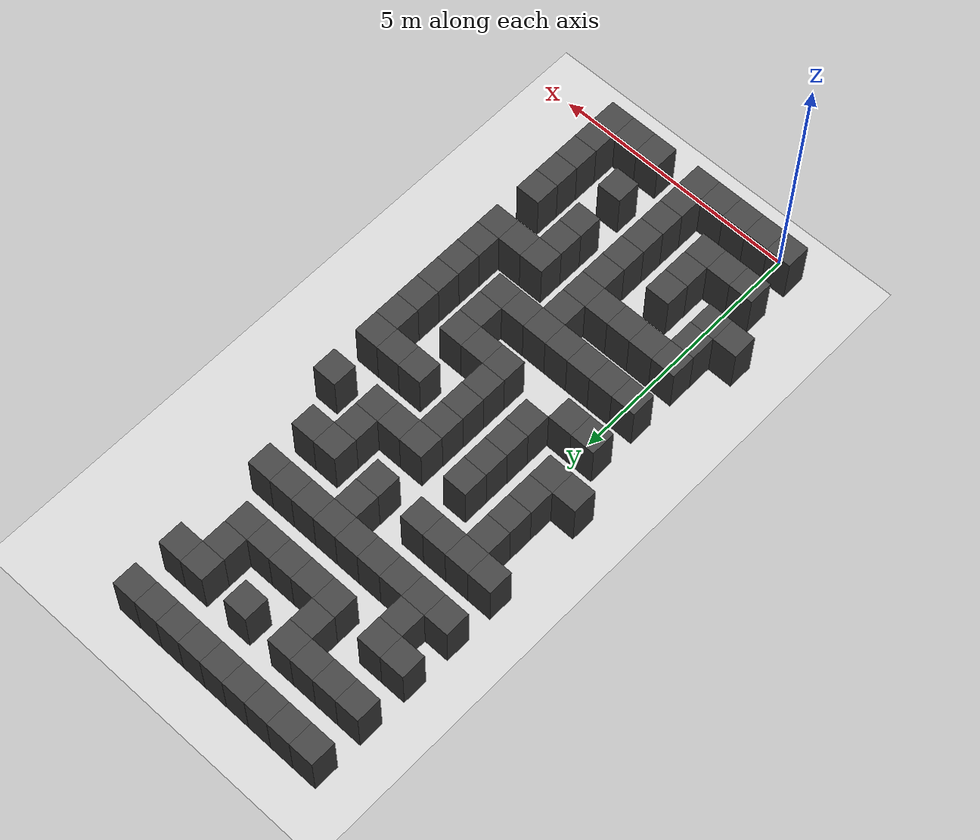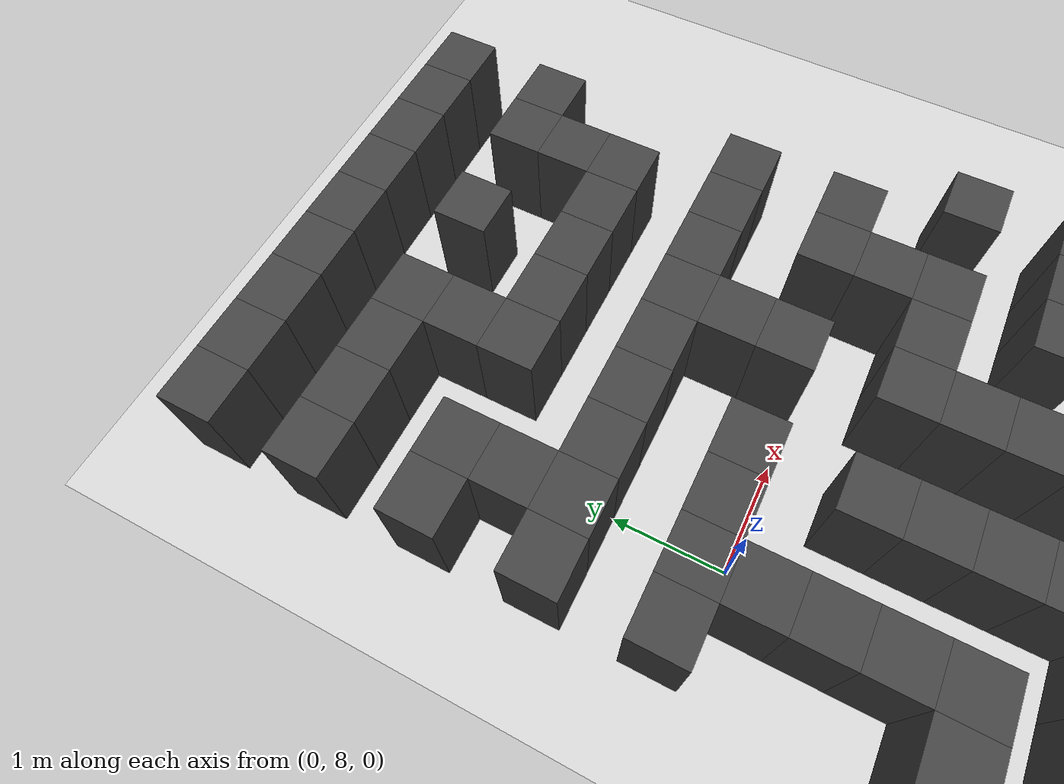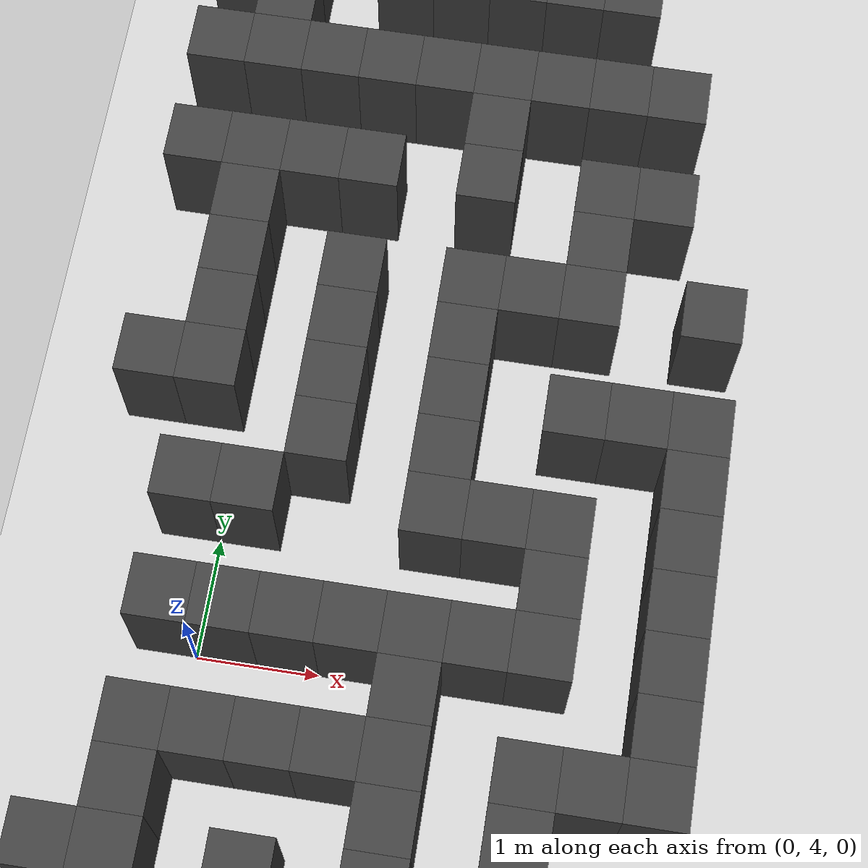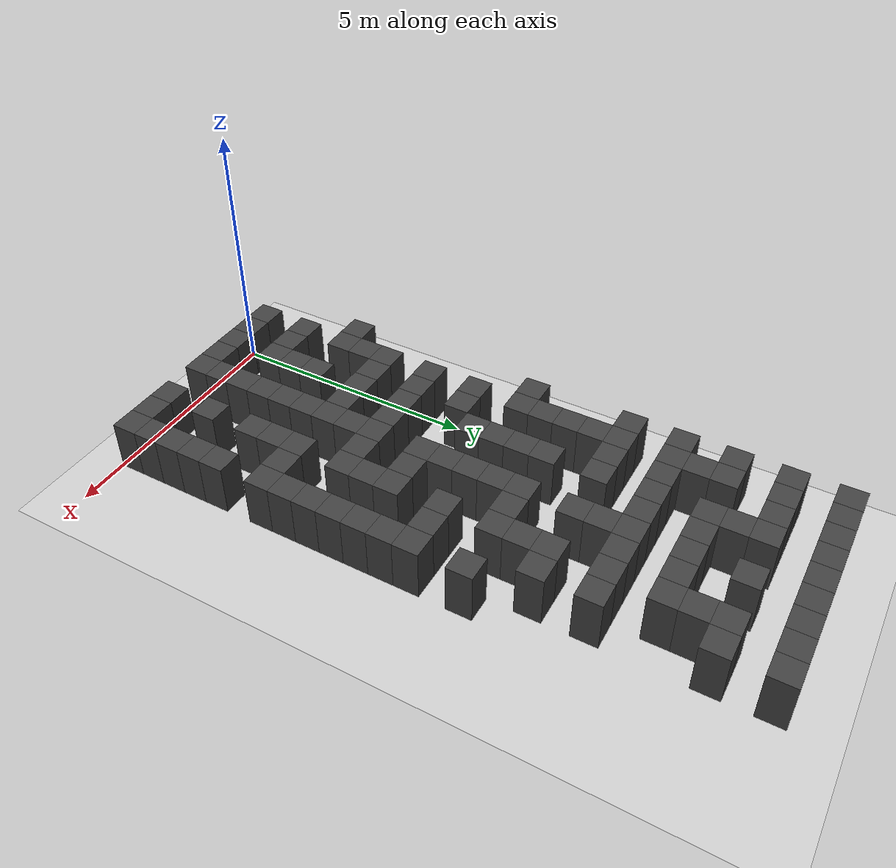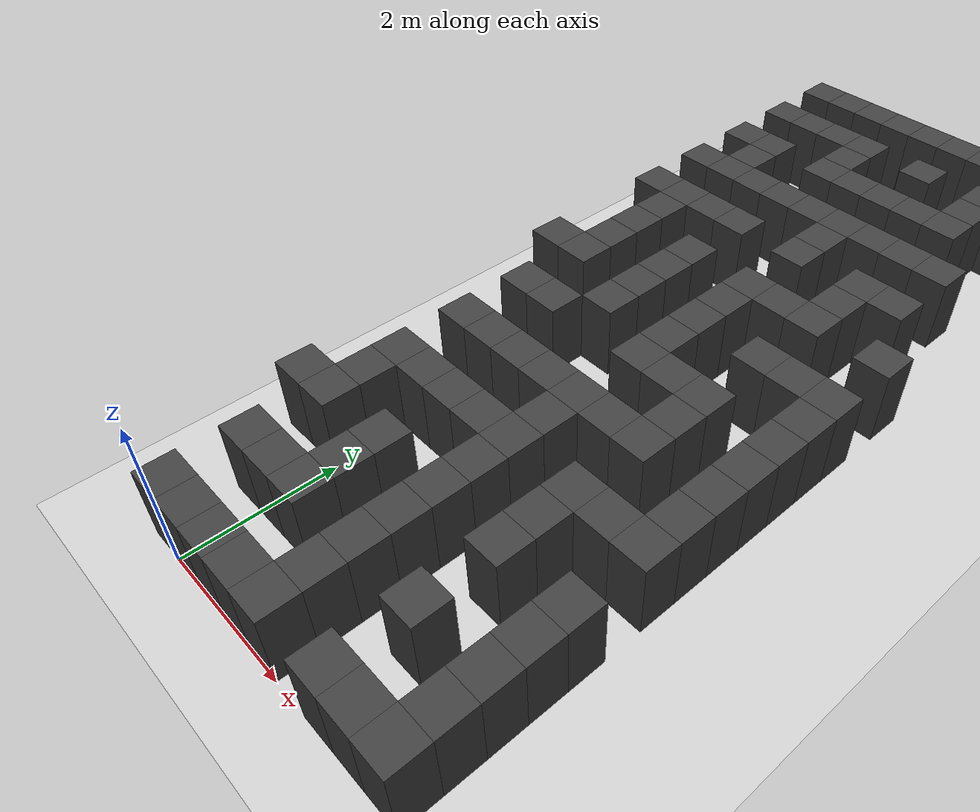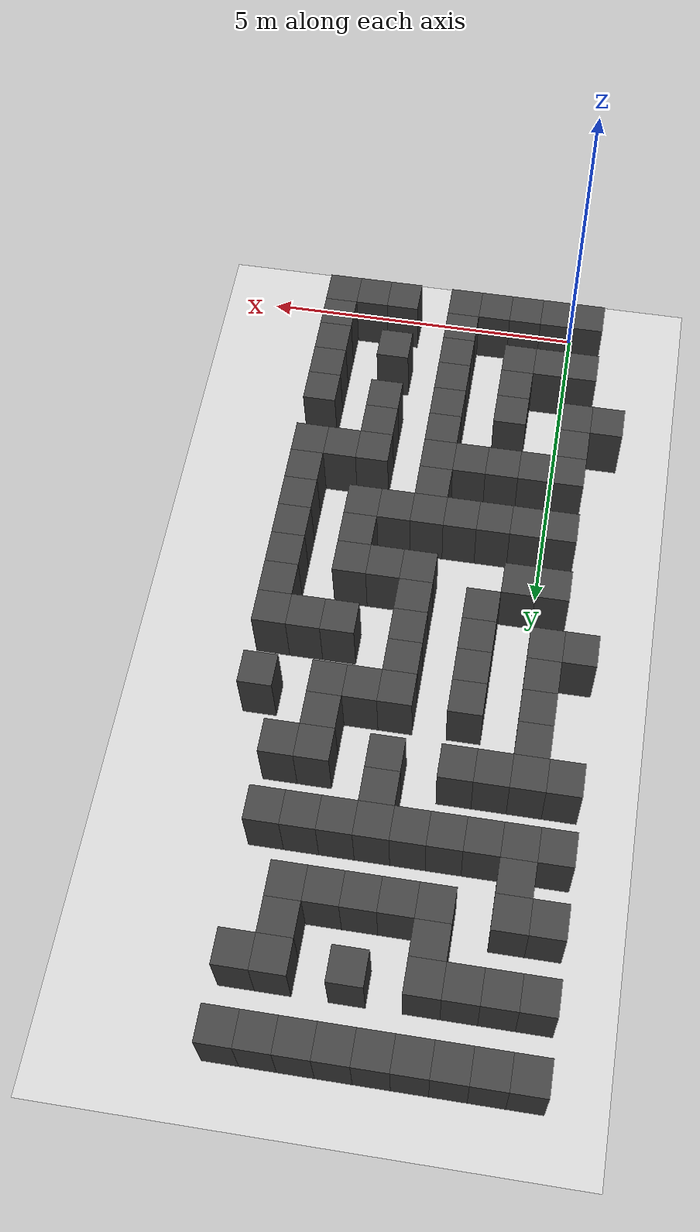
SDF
<sdf version="1.7">
 <world name="map_18332">
  <model name="ground_plane">
   <static>true</static>
   <link name="link">
    <collision name="collision">
     <geometry><plane><normal>0 0 1</normal><size>200 200</size></plane></geometry>
    </collision>
    <visual name="visual">
     <geometry><plane><normal>0 0 1</normal><size>200 200</size></plane></geometry>
     <material><ambient>0.8 0.8 0.8 1</ambient><diffuse>0.8 0.8 0.8 1</diffuse></material>
    </visual>
   </link>
  </model>
  <model name="maze_environment">
   <static>true</static>
   <link name="wall_23">
    <pose>-0.750 12.250 0.500 0 0 0</pose>
    <collision name="col"><geometry><box><size>0.5 0.5 1.0</size></box></geometry></collision>
    <visual name="vis">
     <geometry><box><size>0.5 0.5 1.0</size></box></geometry>
     <material><ambient>0.15 0.15 0.15 1</ambient><diffuse>0.25 0.25 0.25 1</diffuse></material>
    </visual>
   </link>
   <link name="wall_24">
    <pose>-0.250 12.250 0.500 0 0 0</pose>
    <collision name="col"><geometry><box><size>0.5 0.5 1.0</size></box></geometry></collision>
    <visual name="vis">
     <geometry><box><size>0.5 0.5 1.0</size></box></geometry>
     <material><ambient>0.15 0.15 0.15 1</ambient><diffuse>0.25 0.25 0.25 1</diffuse></material>
    </visual>
   </link>
   <link name="wall_25">
    <pose>0.250 12.250 0.500 0 0 0</pose>
    <collision name="col"><geometry><box><size>0.5 0.5 1.0</size></box></geometry></collision>
    <visual name="vis">
     <geometry><box><size>0.5 0.5 1.0</size></box></geometry>
     <material><ambient>0.15 0.15 0.15 1</ambient><diffuse>0.25 0.25 0.25 1</diffuse></material>
    </visual>
   </link>
   <link name="wall_26">
    <pose>0.750 12.250 0.500 0 0 0</pose>
    <collision name="col"><geometry><box><size>0.5 0.5 1.0</size></box></geometry></collision>
    <visual name="vis">
     <geometry><box><size>0.5 0.5 1.0</size></box></geometry>
     <material><ambient>0.15 0.15 0.15 1</ambient><diffuse>0.25 0.25 0.25 1</diffuse></material>
    </visual>
   </link>
   <link name="wall_27">
    <pose>1.250 12.250 0.500 0 0 0</pose>
    <collision name="col"><geometry><box><size>0.5 0.5 1.0</size></box></geometry></collision>
    <visual name="vis">
     <geometry><box><size>0.5 0.5 1.0</size></box></geometry>
     <material><ambient>0.15 0.15 0.15 1</ambient><diffuse>0.25 0.25 0.25 1</diffuse></material>
    </visual>
   </link>
   <link name="wall_28">
    <pose>1.750 12.250 0.500 0 0 0</pose>
    <collision name="col"><geometry><box><size>0.5 0.5 1.0</size></box></geometry></collision>
    <visual name="vis">
     <geometry><box><size>0.5 0.5 1.0</size></box></geometry>
     <material><ambient>0.15 0.15 0.15 1</ambient><diffuse>0.25 0.25 0.25 1</diffuse></material>
    </visual>
   </link>
   <link name="wall_29">
    <pose>2.250 12.250 0.500 0 0 0</pose>
    <collision name="col"><geometry><box><size>0.5 0.5 1.0</size></box></geometry></collision>
    <visual name="vis">
     <geometry><box><size>0.5 0.5 1.0</size></box></geometry>
     <material><ambient>0.15 0.15 0.15 1</ambient><diffuse>0.25 0.25 0.25 1</diffuse></material>
    </visual>
   </link>
   <link name="wall_30">
    <pose>2.750 12.250 0.500 0 0 0</pose>
    <collision name="col"><geometry><box><size>0.5 0.5 1.0</size></box></geometry></collision>
    <visual name="vis">
     <geometry><box><size>0.5 0.5 1.0</size></box></geometry>
     <material><ambient>0.15 0.15 0.15 1</ambient><diffuse>0.25 0.25 0.25 1</diffuse></material>
    </visual>
   </link>
   <link name="wall_31">
    <pose>3.250 12.250 0.500 0 0 0</pose>
    <collision name="col"><geometry><box><size>0.5 0.5 1.0</size></box></geometry></collision>
    <visual name="vis">
     <geometry><box><size>0.5 0.5 1.0</size></box></geometry>
     <material><ambient>0.15 0.15 0.15 1</ambient><diffuse>0.25 0.25 0.25 1</diffuse></material>
    </visual>
   </link>
   <link name="wall_73">
    <pose>-0.750 11.250 0.500 0 0 0</pose>
    <collision name="col"><geometry><box><size>0.5 0.5 1.0</size></box></geometry></collision>
    <visual name="vis">
     <geometry><box><size>0.5 0.5 1.0</size></box></geometry>
     <material><ambient>0.15 0.15 0.15 1</ambient><diffuse>0.25 0.25 0.25 1</diffuse></material>
    </visual>
   </link>
   <link name="wall_74">
    <pose>-0.250 11.250 0.500 0 0 0</pose>
    <collision name="col"><geometry><box><size>0.5 0.5 1.0</size></box></geometry></collision>
    <visual name="vis">
     <geometry><box><size>0.5 0.5 1.0</size></box></geometry>
     <material><ambient>0.15 0.15 0.15 1</ambient><diffuse>0.25 0.25 0.25 1</diffuse></material>
    </visual>
   </link>
   <link name="wall_75">
    <pose>0.250 11.250 0.500 0 0 0</pose>
    <collision name="col"><geometry><box><size>0.5 0.5 1.0</size></box></geometry></collision>
    <visual name="vis">
     <geometry><box><size>0.5 0.5 1.0</size></box></geometry>
     <material><ambient>0.15 0.15 0.15 1</ambient><diffuse>0.25 0.25 0.25 1</diffuse></material>
    </visual>
   </link>
   <link name="wall_76">
    <pose>0.750 11.250 0.500 0 0 0</pose>
    <collision name="col"><geometry><box><size>0.5 0.5 1.0</size></box></geometry></collision>
    <visual name="vis">
     <geometry><box><size>0.5 0.5 1.0</size></box></geometry>
     <material><ambient>0.15 0.15 0.15 1</ambient><diffuse>0.25 0.25 0.25 1</diffuse></material>
    </visual>
   </link>
   <link name="wall_77">
    <pose>1.750 11.250 0.500 0 0 0</pose>
    <collision name="col"><geometry><box><size>0.5 0.5 1.0</size></box></geometry></collision>
    <visual name="vis">
     <geometry><box><size>0.5 0.5 1.0</size></box></geometry>
     <material><ambient>0.15 0.15 0.15 1</ambient><diffuse>0.25 0.25 0.25 1</diffuse></material>
    </visual>
   </link>
   <link name="wall_78">
    <pose>2.750 11.250 0.500 0 0 0</pose>
    <collision name="col"><geometry><box><size>0.5 0.5 1.0</size></box></geometry></collision>
    <visual name="vis">
     <geometry><box><size>0.5 0.5 1.0</size></box></geometry>
     <material><ambient>0.15 0.15 0.15 1</ambient><diffuse>0.25 0.25 0.25 1</diffuse></material>
    </visual>
   </link>
   <link name="wall_79">
    <pose>3.250 11.250 0.500 0 0 0</pose>
    <collision name="col"><geometry><box><size>0.5 0.5 1.0</size></box></geometry></collision>
    <visual name="vis">
     <geometry><box><size>0.5 0.5 1.0</size></box></geometry>
     <material><ambient>0.15 0.15 0.15 1</ambient><diffuse>0.25 0.25 0.25 1</diffuse></material>
    </visual>
   </link>
   <link name="wall_99">
    <pose>0.750 10.750 0.500 0 0 0</pose>
    <collision name="col"><geometry><box><size>0.5 0.5 1.0</size></box></geometry></collision>
    <visual name="vis">
     <geometry><box><size>0.5 0.5 1.0</size></box></geometry>
     <material><ambient>0.15 0.15 0.15 1</ambient><diffuse>0.25 0.25 0.25 1</diffuse></material>
    </visual>
   </link>
   <link name="wall_100">
    <pose>2.750 10.750 0.500 0 0 0</pose>
    <collision name="col"><geometry><box><size>0.5 0.5 1.0</size></box></geometry></collision>
    <visual name="vis">
     <geometry><box><size>0.5 0.5 1.0</size></box></geometry>
     <material><ambient>0.15 0.15 0.15 1</ambient><diffuse>0.25 0.25 0.25 1</diffuse></material>
    </visual>
   </link>
   <link name="wall_124">
    <pose>-0.750 10.250 0.500 0 0 0</pose>
    <collision name="col"><geometry><box><size>0.5 0.5 1.0</size></box></geometry></collision>
    <visual name="vis">
     <geometry><box><size>0.5 0.5 1.0</size></box></geometry>
     <material><ambient>0.15 0.15 0.15 1</ambient><diffuse>0.25 0.25 0.25 1</diffuse></material>
    </visual>
   </link>
   <link name="wall_125">
    <pose>-0.250 10.250 0.500 0 0 0</pose>
    <collision name="col"><geometry><box><size>0.5 0.5 1.0</size></box></geometry></collision>
    <visual name="vis">
     <geometry><box><size>0.5 0.5 1.0</size></box></geometry>
     <material><ambient>0.15 0.15 0.15 1</ambient><diffuse>0.25 0.25 0.25 1</diffuse></material>
    </visual>
   </link>
   <link name="wall_126">
    <pose>0.750 10.250 0.500 0 0 0</pose>
    <collision name="col"><geometry><box><size>0.5 0.5 1.0</size></box></geometry></collision>
    <visual name="vis">
     <geometry><box><size>0.5 0.5 1.0</size></box></geometry>
     <material><ambient>0.15 0.15 0.15 1</ambient><diffuse>0.25 0.25 0.25 1</diffuse></material>
    </visual>
   </link>
   <link name="wall_127">
    <pose>1.250 10.250 0.500 0 0 0</pose>
    <collision name="col"><geometry><box><size>0.5 0.5 1.0</size></box></geometry></collision>
    <visual name="vis">
     <geometry><box><size>0.5 0.5 1.0</size></box></geometry>
     <material><ambient>0.15 0.15 0.15 1</ambient><diffuse>0.25 0.25 0.25 1</diffuse></material>
    </visual>
   </link>
   <link name="wall_128">
    <pose>1.750 10.250 0.500 0 0 0</pose>
    <collision name="col"><geometry><box><size>0.5 0.5 1.0</size></box></geometry></collision>
    <visual name="vis">
     <geometry><box><size>0.5 0.5 1.0</size></box></geometry>
     <material><ambient>0.15 0.15 0.15 1</ambient><diffuse>0.25 0.25 0.25 1</diffuse></material>
    </visual>
   </link>
   <link name="wall_129">
    <pose>2.250 10.250 0.500 0 0 0</pose>
    <collision name="col"><geometry><box><size>0.5 0.5 1.0</size></box></geometry></collision>
    <visual name="vis">
     <geometry><box><size>0.5 0.5 1.0</size></box></geometry>
     <material><ambient>0.15 0.15 0.15 1</ambient><diffuse>0.25 0.25 0.25 1</diffuse></material>
    </visual>
   </link>
   <link name="wall_130">
    <pose>2.750 10.250 0.500 0 0 0</pose>
    <collision name="col"><geometry><box><size>0.5 0.5 1.0</size></box></geometry></collision>
    <visual name="vis">
     <geometry><box><size>0.5 0.5 1.0</size></box></geometry>
     <material><ambient>0.15 0.15 0.15 1</ambient><diffuse>0.25 0.25 0.25 1</diffuse></material>
    </visual>
   </link>
   <link name="wall_151">
    <pose>-0.250 9.750 0.500 0 0 0</pose>
    <collision name="col"><geometry><box><size>0.5 0.5 1.0</size></box></geometry></collision>
    <visual name="vis">
     <geometry><box><size>0.5 0.5 1.0</size></box></geometry>
     <material><ambient>0.15 0.15 0.15 1</ambient><diffuse>0.25 0.25 0.25 1</diffuse></material>
    </visual>
   </link>
   <link name="wall_172">
    <pose>-0.750 9.250 0.500 0 0 0</pose>
    <collision name="col"><geometry><box><size>0.5 0.5 1.0</size></box></geometry></collision>
    <visual name="vis">
     <geometry><box><size>0.5 0.5 1.0</size></box></geometry>
     <material><ambient>0.15 0.15 0.15 1</ambient><diffuse>0.25 0.25 0.25 1</diffuse></material>
    </visual>
   </link>
   <link name="wall_173">
    <pose>-0.250 9.250 0.500 0 0 0</pose>
    <collision name="col"><geometry><box><size>0.5 0.5 1.0</size></box></geometry></collision>
    <visual name="vis">
     <geometry><box><size>0.5 0.5 1.0</size></box></geometry>
     <material><ambient>0.15 0.15 0.15 1</ambient><diffuse>0.25 0.25 0.25 1</diffuse></material>
    </visual>
   </link>
   <link name="wall_174">
    <pose>0.250 9.250 0.500 0 0 0</pose>
    <collision name="col"><geometry><box><size>0.5 0.5 1.0</size></box></geometry></collision>
    <visual name="vis">
     <geometry><box><size>0.5 0.5 1.0</size></box></geometry>
     <material><ambient>0.15 0.15 0.15 1</ambient><diffuse>0.25 0.25 0.25 1</diffuse></material>
    </visual>
   </link>
   <link name="wall_175">
    <pose>0.750 9.250 0.500 0 0 0</pose>
    <collision name="col"><geometry><box><size>0.5 0.5 1.0</size></box></geometry></collision>
    <visual name="vis">
     <geometry><box><size>0.5 0.5 1.0</size></box></geometry>
     <material><ambient>0.15 0.15 0.15 1</ambient><diffuse>0.25 0.25 0.25 1</diffuse></material>
    </visual>
   </link>
   <link name="wall_176">
    <pose>1.250 9.250 0.500 0 0 0</pose>
    <collision name="col"><geometry><box><size>0.5 0.5 1.0</size></box></geometry></collision>
    <visual name="vis">
     <geometry><box><size>0.5 0.5 1.0</size></box></geometry>
     <material><ambient>0.15 0.15 0.15 1</ambient><diffuse>0.25 0.25 0.25 1</diffuse></material>
    </visual>
   </link>
   <link name="wall_177">
    <pose>1.750 9.250 0.500 0 0 0</pose>
    <collision name="col"><geometry><box><size>0.5 0.5 1.0</size></box></geometry></collision>
    <visual name="vis">
     <geometry><box><size>0.5 0.5 1.0</size></box></geometry>
     <material><ambient>0.15 0.15 0.15 1</ambient><diffuse>0.25 0.25 0.25 1</diffuse></material>
    </visual>
   </link>
   <link name="wall_178">
    <pose>2.250 9.250 0.500 0 0 0</pose>
    <collision name="col"><geometry><box><size>0.5 0.5 1.0</size></box></geometry></collision>
    <visual name="vis">
     <geometry><box><size>0.5 0.5 1.0</size></box></geometry>
     <material><ambient>0.15 0.15 0.15 1</ambient><diffuse>0.25 0.25 0.25 1</diffuse></material>
    </visual>
   </link>
   <link name="wall_179">
    <pose>2.750 9.250 0.500 0 0 0</pose>
    <collision name="col"><geometry><box><size>0.5 0.5 1.0</size></box></geometry></collision>
    <visual name="vis">
     <geometry><box><size>0.5 0.5 1.0</size></box></geometry>
     <material><ambient>0.15 0.15 0.15 1</ambient><diffuse>0.25 0.25 0.25 1</diffuse></material>
    </visual>
   </link>
   <link name="wall_180">
    <pose>3.250 9.250 0.500 0 0 0</pose>
    <collision name="col"><geometry><box><size>0.5 0.5 1.0</size></box></geometry></collision>
    <visual name="vis">
     <geometry><box><size>0.5 0.5 1.0</size></box></geometry>
     <material><ambient>0.15 0.15 0.15 1</ambient><diffuse>0.25 0.25 0.25 1</diffuse></material>
    </visual>
   </link>
   <link name="wall_202">
    <pose>1.750 8.750 0.500 0 0 0</pose>
    <collision name="col"><geometry><box><size>0.5 0.5 1.0</size></box></geometry></collision>
    <visual name="vis">
     <geometry><box><size>0.5 0.5 1.0</size></box></geometry>
     <material><ambient>0.15 0.15 0.15 1</ambient><diffuse>0.25 0.25 0.25 1</diffuse></material>
    </visual>
   </link>
   <link name="wall_224">
    <pose>-0.750 8.250 0.500 0 0 0</pose>
    <collision name="col"><geometry><box><size>0.5 0.5 1.0</size></box></geometry></collision>
    <visual name="vis">
     <geometry><box><size>0.5 0.5 1.0</size></box></geometry>
     <material><ambient>0.15 0.15 0.15 1</ambient><diffuse>0.25 0.25 0.25 1</diffuse></material>
    </visual>
   </link>
   <link name="wall_225">
    <pose>-0.250 8.250 0.500 0 0 0</pose>
    <collision name="col"><geometry><box><size>0.5 0.5 1.0</size></box></geometry></collision>
    <visual name="vis">
     <geometry><box><size>0.5 0.5 1.0</size></box></geometry>
     <material><ambient>0.15 0.15 0.15 1</ambient><diffuse>0.25 0.25 0.25 1</diffuse></material>
    </visual>
   </link>
   <link name="wall_226">
    <pose>0.250 8.250 0.500 0 0 0</pose>
    <collision name="col"><geometry><box><size>0.5 0.5 1.0</size></box></geometry></collision>
    <visual name="vis">
     <geometry><box><size>0.5 0.5 1.0</size></box></geometry>
     <material><ambient>0.15 0.15 0.15 1</ambient><diffuse>0.25 0.25 0.25 1</diffuse></material>
    </visual>
   </link>
   <link name="wall_227">
    <pose>0.750 8.250 0.500 0 0 0</pose>
    <collision name="col"><geometry><box><size>0.5 0.5 1.0</size></box></geometry></collision>
    <visual name="vis">
     <geometry><box><size>0.5 0.5 1.0</size></box></geometry>
     <material><ambient>0.15 0.15 0.15 1</ambient><diffuse>0.25 0.25 0.25 1</diffuse></material>
    </visual>
   </link>
   <link name="wall_228">
    <pose>1.750 8.250 0.500 0 0 0</pose>
    <collision name="col"><geometry><box><size>0.5 0.5 1.0</size></box></geometry></collision>
    <visual name="vis">
     <geometry><box><size>0.5 0.5 1.0</size></box></geometry>
     <material><ambient>0.15 0.15 0.15 1</ambient><diffuse>0.25 0.25 0.25 1</diffuse></material>
    </visual>
   </link>
   <link name="wall_229">
    <pose>2.750 8.250 0.500 0 0 0</pose>
    <collision name="col"><geometry><box><size>0.5 0.5 1.0</size></box></geometry></collision>
    <visual name="vis">
     <geometry><box><size>0.5 0.5 1.0</size></box></geometry>
     <material><ambient>0.15 0.15 0.15 1</ambient><diffuse>0.25 0.25 0.25 1</diffuse></material>
    </visual>
   </link>
   <link name="wall_230">
    <pose>3.250 8.250 0.500 0 0 0</pose>
    <collision name="col"><geometry><box><size>0.5 0.5 1.0</size></box></geometry></collision>
    <visual name="vis">
     <geometry><box><size>0.5 0.5 1.0</size></box></geometry>
     <material><ambient>0.15 0.15 0.15 1</ambient><diffuse>0.25 0.25 0.25 1</diffuse></material>
    </visual>
   </link>
   <link name="wall_252">
    <pose>-0.250 7.750 0.500 0 0 0</pose>
    <collision name="col"><geometry><box><size>0.5 0.5 1.0</size></box></geometry></collision>
    <visual name="vis">
     <geometry><box><size>0.5 0.5 1.0</size></box></geometry>
     <material><ambient>0.15 0.15 0.15 1</ambient><diffuse>0.25 0.25 0.25 1</diffuse></material>
    </visual>
   </link>
   <link name="wall_253">
    <pose>2.750 7.750 0.500 0 0 0</pose>
    <collision name="col"><geometry><box><size>0.5 0.5 1.0</size></box></geometry></collision>
    <visual name="vis">
     <geometry><box><size>0.5 0.5 1.0</size></box></geometry>
     <material><ambient>0.15 0.15 0.15 1</ambient><diffuse>0.25 0.25 0.25 1</diffuse></material>
    </visual>
   </link>
   <link name="wall_273">
    <pose>-0.250 7.250 0.500 0 0 0</pose>
    <collision name="col"><geometry><box><size>0.5 0.5 1.0</size></box></geometry></collision>
    <visual name="vis">
     <geometry><box><size>0.5 0.5 1.0</size></box></geometry>
     <material><ambient>0.15 0.15 0.15 1</ambient><diffuse>0.25 0.25 0.25 1</diffuse></material>
    </visual>
   </link>
   <link name="wall_274">
    <pose>0.750 7.250 0.500 0 0 0</pose>
    <collision name="col"><geometry><box><size>0.5 0.5 1.0</size></box></geometry></collision>
    <visual name="vis">
     <geometry><box><size>0.5 0.5 1.0</size></box></geometry>
     <material><ambient>0.15 0.15 0.15 1</ambient><diffuse>0.25 0.25 0.25 1</diffuse></material>
    </visual>
   </link>
   <link name="wall_275">
    <pose>1.750 7.250 0.500 0 0 0</pose>
    <collision name="col"><geometry><box><size>0.5 0.5 1.0</size></box></geometry></collision>
    <visual name="vis">
     <geometry><box><size>0.5 0.5 1.0</size></box></geometry>
     <material><ambient>0.15 0.15 0.15 1</ambient><diffuse>0.25 0.25 0.25 1</diffuse></material>
    </visual>
   </link>
   <link name="wall_276">
    <pose>2.250 7.250 0.500 0 0 0</pose>
    <collision name="col"><geometry><box><size>0.5 0.5 1.0</size></box></geometry></collision>
    <visual name="vis">
     <geometry><box><size>0.5 0.5 1.0</size></box></geometry>
     <material><ambient>0.15 0.15 0.15 1</ambient><diffuse>0.25 0.25 0.25 1</diffuse></material>
    </visual>
   </link>
   <link name="wall_277">
    <pose>2.750 7.250 0.500 0 0 0</pose>
    <collision name="col"><geometry><box><size>0.5 0.5 1.0</size></box></geometry></collision>
    <visual name="vis">
     <geometry><box><size>0.5 0.5 1.0</size></box></geometry>
     <material><ambient>0.15 0.15 0.15 1</ambient><diffuse>0.25 0.25 0.25 1</diffuse></material>
    </visual>
   </link>
   <link name="wall_278">
    <pose>3.750 7.250 0.500 0 0 0</pose>
    <collision name="col"><geometry><box><size>0.5 0.5 1.0</size></box></geometry></collision>
    <visual name="vis">
     <geometry><box><size>0.5 0.5 1.0</size></box></geometry>
     <material><ambient>0.15 0.15 0.15 1</ambient><diffuse>0.25 0.25 0.25 1</diffuse></material>
    </visual>
   </link>
   <link name="wall_299">
    <pose>-0.250 6.750 0.500 0 0 0</pose>
    <collision name="col"><geometry><box><size>0.5 0.5 1.0</size></box></geometry></collision>
    <visual name="vis">
     <geometry><box><size>0.5 0.5 1.0</size></box></geometry>
     <material><ambient>0.15 0.15 0.15 1</ambient><diffuse>0.25 0.25 0.25 1</diffuse></material>
    </visual>
   </link>
   <link name="wall_300">
    <pose>0.750 6.750 0.500 0 0 0</pose>
    <collision name="col"><geometry><box><size>0.5 0.5 1.0</size></box></geometry></collision>
    <visual name="vis">
     <geometry><box><size>0.5 0.5 1.0</size></box></geometry>
     <material><ambient>0.15 0.15 0.15 1</ambient><diffuse>0.25 0.25 0.25 1</diffuse></material>
    </visual>
   </link>
   <link name="wall_301">
    <pose>1.750 6.750 0.500 0 0 0</pose>
    <collision name="col"><geometry><box><size>0.5 0.5 1.0</size></box></geometry></collision>
    <visual name="vis">
     <geometry><box><size>0.5 0.5 1.0</size></box></geometry>
     <material><ambient>0.15 0.15 0.15 1</ambient><diffuse>0.25 0.25 0.25 1</diffuse></material>
    </visual>
   </link>
   <link name="wall_326">
    <pose>-0.750 6.250 0.500 0 0 0</pose>
    <collision name="col"><geometry><box><size>0.5 0.5 1.0</size></box></geometry></collision>
    <visual name="vis">
     <geometry><box><size>0.5 0.5 1.0</size></box></geometry>
     <material><ambient>0.15 0.15 0.15 1</ambient><diffuse>0.25 0.25 0.25 1</diffuse></material>
    </visual>
   </link>
   <link name="wall_327">
    <pose>-0.250 6.250 0.500 0 0 0</pose>
    <collision name="col"><geometry><box><size>0.5 0.5 1.0</size></box></geometry></collision>
    <visual name="vis">
     <geometry><box><size>0.5 0.5 1.0</size></box></geometry>
     <material><ambient>0.15 0.15 0.15 1</ambient><diffuse>0.25 0.25 0.25 1</diffuse></material>
    </visual>
   </link>
   <link name="wall_328">
    <pose>0.750 6.250 0.500 0 0 0</pose>
    <collision name="col"><geometry><box><size>0.5 0.5 1.0</size></box></geometry></collision>
    <visual name="vis">
     <geometry><box><size>0.5 0.5 1.0</size></box></geometry>
     <material><ambient>0.15 0.15 0.15 1</ambient><diffuse>0.25 0.25 0.25 1</diffuse></material>
    </visual>
   </link>
   <link name="wall_329">
    <pose>1.750 6.250 0.500 0 0 0</pose>
    <collision name="col"><geometry><box><size>0.5 0.5 1.0</size></box></geometry></collision>
    <visual name="vis">
     <geometry><box><size>0.5 0.5 1.0</size></box></geometry>
     <material><ambient>0.15 0.15 0.15 1</ambient><diffuse>0.25 0.25 0.25 1</diffuse></material>
    </visual>
   </link>
   <link name="wall_330">
    <pose>2.750 6.250 0.500 0 0 0</pose>
    <collision name="col"><geometry><box><size>0.5 0.5 1.0</size></box></geometry></collision>
    <visual name="vis">
     <geometry><box><size>0.5 0.5 1.0</size></box></geometry>
     <material><ambient>0.15 0.15 0.15 1</ambient><diffuse>0.25 0.25 0.25 1</diffuse></material>
    </visual>
   </link>
   <link name="wall_331">
    <pose>3.250 6.250 0.500 0 0 0</pose>
    <collision name="col"><geometry><box><size>0.5 0.5 1.0</size></box></geometry></collision>
    <visual name="vis">
     <geometry><box><size>0.5 0.5 1.0</size></box></geometry>
     <material><ambient>0.15 0.15 0.15 1</ambient><diffuse>0.25 0.25 0.25 1</diffuse></material>
    </visual>
   </link>
   <link name="wall_332">
    <pose>3.750 6.250 0.500 0 0 0</pose>
    <collision name="col"><geometry><box><size>0.5 0.5 1.0</size></box></geometry></collision>
    <visual name="vis">
     <geometry><box><size>0.5 0.5 1.0</size></box></geometry>
     <material><ambient>0.15 0.15 0.15 1</ambient><diffuse>0.25 0.25 0.25 1</diffuse></material>
    </visual>
   </link>
   <link name="wall_354">
    <pose>0.750 5.750 0.500 0 0 0</pose>
    <collision name="col"><geometry><box><size>0.5 0.5 1.0</size></box></geometry></collision>
    <visual name="vis">
     <geometry><box><size>0.5 0.5 1.0</size></box></geometry>
     <material><ambient>0.15 0.15 0.15 1</ambient><diffuse>0.25 0.25 0.25 1</diffuse></material>
    </visual>
   </link>
   <link name="wall_355">
    <pose>1.750 5.750 0.500 0 0 0</pose>
    <collision name="col"><geometry><box><size>0.5 0.5 1.0</size></box></geometry></collision>
    <visual name="vis">
     <geometry><box><size>0.5 0.5 1.0</size></box></geometry>
     <material><ambient>0.15 0.15 0.15 1</ambient><diffuse>0.25 0.25 0.25 1</diffuse></material>
    </visual>
   </link>
   <link name="wall_356">
    <pose>3.750 5.750 0.500 0 0 0</pose>
    <collision name="col"><geometry><box><size>0.5 0.5 1.0</size></box></geometry></collision>
    <visual name="vis">
     <geometry><box><size>0.5 0.5 1.0</size></box></geometry>
     <material><ambient>0.15 0.15 0.15 1</ambient><diffuse>0.25 0.25 0.25 1</diffuse></material>
    </visual>
   </link>
   <link name="wall_374">
    <pose>-0.250 5.250 0.500 0 0 0</pose>
    <collision name="col"><geometry><box><size>0.5 0.5 1.0</size></box></geometry></collision>
    <visual name="vis">
     <geometry><box><size>0.5 0.5 1.0</size></box></geometry>
     <material><ambient>0.15 0.15 0.15 1</ambient><diffuse>0.25 0.25 0.25 1</diffuse></material>
    </visual>
   </link>
   <link name="wall_375">
    <pose>0.250 5.250 0.500 0 0 0</pose>
    <collision name="col"><geometry><box><size>0.5 0.5 1.0</size></box></geometry></collision>
    <visual name="vis">
     <geometry><box><size>0.5 0.5 1.0</size></box></geometry>
     <material><ambient>0.15 0.15 0.15 1</ambient><diffuse>0.25 0.25 0.25 1</diffuse></material>
    </visual>
   </link>
   <link name="wall_376">
    <pose>1.750 5.250 0.500 0 0 0</pose>
    <collision name="col"><geometry><box><size>0.5 0.5 1.0</size></box></geometry></collision>
    <visual name="vis">
     <geometry><box><size>0.5 0.5 1.0</size></box></geometry>
     <material><ambient>0.15 0.15 0.15 1</ambient><diffuse>0.25 0.25 0.25 1</diffuse></material>
    </visual>
   </link>
   <link name="wall_377">
    <pose>2.250 5.250 0.500 0 0 0</pose>
    <collision name="col"><geometry><box><size>0.5 0.5 1.0</size></box></geometry></collision>
    <visual name="vis">
     <geometry><box><size>0.5 0.5 1.0</size></box></geometry>
     <material><ambient>0.15 0.15 0.15 1</ambient><diffuse>0.25 0.25 0.25 1</diffuse></material>
    </visual>
   </link>
   <link name="wall_378">
    <pose>2.750 5.250 0.500 0 0 0</pose>
    <collision name="col"><geometry><box><size>0.5 0.5 1.0</size></box></geometry></collision>
    <visual name="vis">
     <geometry><box><size>0.5 0.5 1.0</size></box></geometry>
     <material><ambient>0.15 0.15 0.15 1</ambient><diffuse>0.25 0.25 0.25 1</diffuse></material>
    </visual>
   </link>
   <link name="wall_379">
    <pose>3.750 5.250 0.500 0 0 0</pose>
    <collision name="col"><geometry><box><size>0.5 0.5 1.0</size></box></geometry></collision>
    <visual name="vis">
     <geometry><box><size>0.5 0.5 1.0</size></box></geometry>
     <material><ambient>0.15 0.15 0.15 1</ambient><diffuse>0.25 0.25 0.25 1</diffuse></material>
    </visual>
   </link>
   <link name="wall_401">
    <pose>2.750 4.750 0.500 0 0 0</pose>
    <collision name="col"><geometry><box><size>0.5 0.5 1.0</size></box></geometry></collision>
    <visual name="vis">
     <geometry><box><size>0.5 0.5 1.0</size></box></geometry>
     <material><ambient>0.15 0.15 0.15 1</ambient><diffuse>0.25 0.25 0.25 1</diffuse></material>
    </visual>
   </link>
   <link name="wall_402">
    <pose>3.750 4.750 0.500 0 0 0</pose>
    <collision name="col"><geometry><box><size>0.5 0.5 1.0</size></box></geometry></collision>
    <visual name="vis">
     <geometry><box><size>0.5 0.5 1.0</size></box></geometry>
     <material><ambient>0.15 0.15 0.15 1</ambient><diffuse>0.25 0.25 0.25 1</diffuse></material>
    </visual>
   </link>
   <link name="wall_426">
    <pose>-0.250 4.250 0.500 0 0 0</pose>
    <collision name="col"><geometry><box><size>0.5 0.5 1.0</size></box></geometry></collision>
    <visual name="vis">
     <geometry><box><size>0.5 0.5 1.0</size></box></geometry>
     <material><ambient>0.15 0.15 0.15 1</ambient><diffuse>0.25 0.25 0.25 1</diffuse></material>
    </visual>
   </link>
   <link name="wall_427">
    <pose>0.250 4.250 0.500 0 0 0</pose>
    <collision name="col"><geometry><box><size>0.5 0.5 1.0</size></box></geometry></collision>
    <visual name="vis">
     <geometry><box><size>0.5 0.5 1.0</size></box></geometry>
     <material><ambient>0.15 0.15 0.15 1</ambient><diffuse>0.25 0.25 0.25 1</diffuse></material>
    </visual>
   </link>
   <link name="wall_428">
    <pose>0.750 4.250 0.500 0 0 0</pose>
    <collision name="col"><geometry><box><size>0.5 0.5 1.0</size></box></geometry></collision>
    <visual name="vis">
     <geometry><box><size>0.5 0.5 1.0</size></box></geometry>
     <material><ambient>0.15 0.15 0.15 1</ambient><diffuse>0.25 0.25 0.25 1</diffuse></material>
    </visual>
   </link>
   <link name="wall_429">
    <pose>1.250 4.250 0.500 0 0 0</pose>
    <collision name="col"><geometry><box><size>0.5 0.5 1.0</size></box></geometry></collision>
    <visual name="vis">
     <geometry><box><size>0.5 0.5 1.0</size></box></geometry>
     <material><ambient>0.15 0.15 0.15 1</ambient><diffuse>0.25 0.25 0.25 1</diffuse></material>
    </visual>
   </link>
   <link name="wall_430">
    <pose>1.750 4.250 0.500 0 0 0</pose>
    <collision name="col"><geometry><box><size>0.5 0.5 1.0</size></box></geometry></collision>
    <visual name="vis">
     <geometry><box><size>0.5 0.5 1.0</size></box></geometry>
     <material><ambient>0.15 0.15 0.15 1</ambient><diffuse>0.25 0.25 0.25 1</diffuse></material>
    </visual>
   </link>
   <link name="wall_431">
    <pose>2.250 4.250 0.500 0 0 0</pose>
    <collision name="col"><geometry><box><size>0.5 0.5 1.0</size></box></geometry></collision>
    <visual name="vis">
     <geometry><box><size>0.5 0.5 1.0</size></box></geometry>
     <material><ambient>0.15 0.15 0.15 1</ambient><diffuse>0.25 0.25 0.25 1</diffuse></material>
    </visual>
   </link>
   <link name="wall_432">
    <pose>2.750 4.250 0.500 0 0 0</pose>
    <collision name="col"><geometry><box><size>0.5 0.5 1.0</size></box></geometry></collision>
    <visual name="vis">
     <geometry><box><size>0.5 0.5 1.0</size></box></geometry>
     <material><ambient>0.15 0.15 0.15 1</ambient><diffuse>0.25 0.25 0.25 1</diffuse></material>
    </visual>
   </link>
   <link name="wall_433">
    <pose>3.750 4.250 0.500 0 0 0</pose>
    <collision name="col"><geometry><box><size>0.5 0.5 1.0</size></box></geometry></collision>
    <visual name="vis">
     <geometry><box><size>0.5 0.5 1.0</size></box></geometry>
     <material><ambient>0.15 0.15 0.15 1</ambient><diffuse>0.25 0.25 0.25 1</diffuse></material>
    </visual>
   </link>
   <link name="wall_453">
    <pose>1.750 3.750 0.500 0 0 0</pose>
    <collision name="col"><geometry><box><size>0.5 0.5 1.0</size></box></geometry></collision>
    <visual name="vis">
     <geometry><box><size>0.5 0.5 1.0</size></box></geometry>
     <material><ambient>0.15 0.15 0.15 1</ambient><diffuse>0.25 0.25 0.25 1</diffuse></material>
    </visual>
   </link>
   <link name="wall_454">
    <pose>3.750 3.750 0.500 0 0 0</pose>
    <collision name="col"><geometry><box><size>0.5 0.5 1.0</size></box></geometry></collision>
    <visual name="vis">
     <geometry><box><size>0.5 0.5 1.0</size></box></geometry>
     <material><ambient>0.15 0.15 0.15 1</ambient><diffuse>0.25 0.25 0.25 1</diffuse></material>
    </visual>
   </link>
   <link name="wall_477">
    <pose>-0.250 3.250 0.500 0 0 0</pose>
    <collision name="col"><geometry><box><size>0.5 0.5 1.0</size></box></geometry></collision>
    <visual name="vis">
     <geometry><box><size>0.5 0.5 1.0</size></box></geometry>
     <material><ambient>0.15 0.15 0.15 1</ambient><diffuse>0.25 0.25 0.25 1</diffuse></material>
    </visual>
   </link>
   <link name="wall_478">
    <pose>0.250 3.250 0.500 0 0 0</pose>
    <collision name="col"><geometry><box><size>0.5 0.5 1.0</size></box></geometry></collision>
    <visual name="vis">
     <geometry><box><size>0.5 0.5 1.0</size></box></geometry>
     <material><ambient>0.15 0.15 0.15 1</ambient><diffuse>0.25 0.25 0.25 1</diffuse></material>
    </visual>
   </link>
   <link name="wall_479">
    <pose>0.750 3.250 0.500 0 0 0</pose>
    <collision name="col"><geometry><box><size>0.5 0.5 1.0</size></box></geometry></collision>
    <visual name="vis">
     <geometry><box><size>0.5 0.5 1.0</size></box></geometry>
     <material><ambient>0.15 0.15 0.15 1</ambient><diffuse>0.25 0.25 0.25 1</diffuse></material>
    </visual>
   </link>
   <link name="wall_480">
    <pose>1.250 3.250 0.500 0 0 0</pose>
    <collision name="col"><geometry><box><size>0.5 0.5 1.0</size></box></geometry></collision>
    <visual name="vis">
     <geometry><box><size>0.5 0.5 1.0</size></box></geometry>
     <material><ambient>0.15 0.15 0.15 1</ambient><diffuse>0.25 0.25 0.25 1</diffuse></material>
    </visual>
   </link>
   <link name="wall_481">
    <pose>1.750 3.250 0.500 0 0 0</pose>
    <collision name="col"><geometry><box><size>0.5 0.5 1.0</size></box></geometry></collision>
    <visual name="vis">
     <geometry><box><size>0.5 0.5 1.0</size></box></geometry>
     <material><ambient>0.15 0.15 0.15 1</ambient><diffuse>0.25 0.25 0.25 1</diffuse></material>
    </visual>
   </link>
   <link name="wall_482">
    <pose>2.750 3.250 0.500 0 0 0</pose>
    <collision name="col"><geometry><box><size>0.5 0.5 1.0</size></box></geometry></collision>
    <visual name="vis">
     <geometry><box><size>0.5 0.5 1.0</size></box></geometry>
     <material><ambient>0.15 0.15 0.15 1</ambient><diffuse>0.25 0.25 0.25 1</diffuse></material>
    </visual>
   </link>
   <link name="wall_483">
    <pose>3.250 3.250 0.500 0 0 0</pose>
    <collision name="col"><geometry><box><size>0.5 0.5 1.0</size></box></geometry></collision>
    <visual name="vis">
     <geometry><box><size>0.5 0.5 1.0</size></box></geometry>
     <material><ambient>0.15 0.15 0.15 1</ambient><diffuse>0.25 0.25 0.25 1</diffuse></material>
    </visual>
   </link>
   <link name="wall_484">
    <pose>3.750 3.250 0.500 0 0 0</pose>
    <collision name="col"><geometry><box><size>0.5 0.5 1.0</size></box></geometry></collision>
    <visual name="vis">
     <geometry><box><size>0.5 0.5 1.0</size></box></geometry>
     <material><ambient>0.15 0.15 0.15 1</ambient><diffuse>0.25 0.25 0.25 1</diffuse></material>
    </visual>
   </link>
   <link name="wall_502">
    <pose>-0.250 2.750 0.500 0 0 0</pose>
    <collision name="col"><geometry><box><size>0.5 0.5 1.0</size></box></geometry></collision>
    <visual name="vis">
     <geometry><box><size>0.5 0.5 1.0</size></box></geometry>
     <material><ambient>0.15 0.15 0.15 1</ambient><diffuse>0.25 0.25 0.25 1</diffuse></material>
    </visual>
   </link>
   <link name="wall_503">
    <pose>1.750 2.750 0.500 0 0 0</pose>
    <collision name="col"><geometry><box><size>0.5 0.5 1.0</size></box></geometry></collision>
    <visual name="vis">
     <geometry><box><size>0.5 0.5 1.0</size></box></geometry>
     <material><ambient>0.15 0.15 0.15 1</ambient><diffuse>0.25 0.25 0.25 1</diffuse></material>
    </visual>
   </link>
   <link name="wall_504">
    <pose>2.750 2.750 0.500 0 0 0</pose>
    <collision name="col"><geometry><box><size>0.5 0.5 1.0</size></box></geometry></collision>
    <visual name="vis">
     <geometry><box><size>0.5 0.5 1.0</size></box></geometry>
     <material><ambient>0.15 0.15 0.15 1</ambient><diffuse>0.25 0.25 0.25 1</diffuse></material>
    </visual>
   </link>
   <link name="wall_526">
    <pose>-0.750 2.250 0.500 0 0 0</pose>
    <collision name="col"><geometry><box><size>0.5 0.5 1.0</size></box></geometry></collision>
    <visual name="vis">
     <geometry><box><size>0.5 0.5 1.0</size></box></geometry>
     <material><ambient>0.15 0.15 0.15 1</ambient><diffuse>0.25 0.25 0.25 1</diffuse></material>
    </visual>
   </link>
   <link name="wall_527">
    <pose>-0.250 2.250 0.500 0 0 0</pose>
    <collision name="col"><geometry><box><size>0.5 0.5 1.0</size></box></geometry></collision>
    <visual name="vis">
     <geometry><box><size>0.5 0.5 1.0</size></box></geometry>
     <material><ambient>0.15 0.15 0.15 1</ambient><diffuse>0.25 0.25 0.25 1</diffuse></material>
    </visual>
   </link>
   <link name="wall_528">
    <pose>0.750 2.250 0.500 0 0 0</pose>
    <collision name="col"><geometry><box><size>0.5 0.5 1.0</size></box></geometry></collision>
    <visual name="vis">
     <geometry><box><size>0.5 0.5 1.0</size></box></geometry>
     <material><ambient>0.15 0.15 0.15 1</ambient><diffuse>0.25 0.25 0.25 1</diffuse></material>
    </visual>
   </link>
   <link name="wall_529">
    <pose>1.750 2.250 0.500 0 0 0</pose>
    <collision name="col"><geometry><box><size>0.5 0.5 1.0</size></box></geometry></collision>
    <visual name="vis">
     <geometry><box><size>0.5 0.5 1.0</size></box></geometry>
     <material><ambient>0.15 0.15 0.15 1</ambient><diffuse>0.25 0.25 0.25 1</diffuse></material>
    </visual>
   </link>
   <link name="wall_530">
    <pose>2.750 2.250 0.500 0 0 0</pose>
    <collision name="col"><geometry><box><size>0.5 0.5 1.0</size></box></geometry></collision>
    <visual name="vis">
     <geometry><box><size>0.5 0.5 1.0</size></box></geometry>
     <material><ambient>0.15 0.15 0.15 1</ambient><diffuse>0.25 0.25 0.25 1</diffuse></material>
    </visual>
   </link>
   <link name="wall_531">
    <pose>3.750 2.250 0.500 0 0 0</pose>
    <collision name="col"><geometry><box><size>0.5 0.5 1.0</size></box></geometry></collision>
    <visual name="vis">
     <geometry><box><size>0.5 0.5 1.0</size></box></geometry>
     <material><ambient>0.15 0.15 0.15 1</ambient><diffuse>0.25 0.25 0.25 1</diffuse></material>
    </visual>
   </link>
   <link name="wall_550">
    <pose>0.750 1.750 0.500 0 0 0</pose>
    <collision name="col"><geometry><box><size>0.5 0.5 1.0</size></box></geometry></collision>
    <visual name="vis">
     <geometry><box><size>0.5 0.5 1.0</size></box></geometry>
     <material><ambient>0.15 0.15 0.15 1</ambient><diffuse>0.25 0.25 0.25 1</diffuse></material>
    </visual>
   </link>
   <link name="wall_551">
    <pose>1.750 1.750 0.500 0 0 0</pose>
    <collision name="col"><geometry><box><size>0.5 0.5 1.0</size></box></geometry></collision>
    <visual name="vis">
     <geometry><box><size>0.5 0.5 1.0</size></box></geometry>
     <material><ambient>0.15 0.15 0.15 1</ambient><diffuse>0.25 0.25 0.25 1</diffuse></material>
    </visual>
   </link>
   <link name="wall_552">
    <pose>3.750 1.750 0.500 0 0 0</pose>
    <collision name="col"><geometry><box><size>0.5 0.5 1.0</size></box></geometry></collision>
    <visual name="vis">
     <geometry><box><size>0.5 0.5 1.0</size></box></geometry>
     <material><ambient>0.15 0.15 0.15 1</ambient><diffuse>0.25 0.25 0.25 1</diffuse></material>
    </visual>
   </link>
   <link name="wall_576">
    <pose>-0.250 1.250 0.500 0 0 0</pose>
    <collision name="col"><geometry><box><size>0.5 0.5 1.0</size></box></geometry></collision>
    <visual name="vis">
     <geometry><box><size>0.5 0.5 1.0</size></box></geometry>
     <material><ambient>0.15 0.15 0.15 1</ambient><diffuse>0.25 0.25 0.25 1</diffuse></material>
    </visual>
   </link>
   <link name="wall_577">
    <pose>0.250 1.250 0.500 0 0 0</pose>
    <collision name="col"><geometry><box><size>0.5 0.5 1.0</size></box></geometry></collision>
    <visual name="vis">
     <geometry><box><size>0.5 0.5 1.0</size></box></geometry>
     <material><ambient>0.15 0.15 0.15 1</ambient><diffuse>0.25 0.25 0.25 1</diffuse></material>
    </visual>
   </link>
   <link name="wall_578">
    <pose>0.750 1.250 0.500 0 0 0</pose>
    <collision name="col"><geometry><box><size>0.5 0.5 1.0</size></box></geometry></collision>
    <visual name="vis">
     <geometry><box><size>0.5 0.5 1.0</size></box></geometry>
     <material><ambient>0.15 0.15 0.15 1</ambient><diffuse>0.25 0.25 0.25 1</diffuse></material>
    </visual>
   </link>
   <link name="wall_579">
    <pose>1.750 1.250 0.500 0 0 0</pose>
    <collision name="col"><geometry><box><size>0.5 0.5 1.0</size></box></geometry></collision>
    <visual name="vis">
     <geometry><box><size>0.5 0.5 1.0</size></box></geometry>
     <material><ambient>0.15 0.15 0.15 1</ambient><diffuse>0.25 0.25 0.25 1</diffuse></material>
    </visual>
   </link>
   <link name="wall_580">
    <pose>2.750 1.250 0.500 0 0 0</pose>
    <collision name="col"><geometry><box><size>0.5 0.5 1.0</size></box></geometry></collision>
    <visual name="vis">
     <geometry><box><size>0.5 0.5 1.0</size></box></geometry>
     <material><ambient>0.15 0.15 0.15 1</ambient><diffuse>0.25 0.25 0.25 1</diffuse></material>
    </visual>
   </link>
   <link name="wall_581">
    <pose>3.750 1.250 0.500 0 0 0</pose>
    <collision name="col"><geometry><box><size>0.5 0.5 1.0</size></box></geometry></collision>
    <visual name="vis">
     <geometry><box><size>0.5 0.5 1.0</size></box></geometry>
     <material><ambient>0.15 0.15 0.15 1</ambient><diffuse>0.25 0.25 0.25 1</diffuse></material>
    </visual>
   </link>
   <link name="wall_601">
    <pose>1.750 0.750 0.500 0 0 0</pose>
    <collision name="col"><geometry><box><size>0.5 0.5 1.0</size></box></geometry></collision>
    <visual name="vis">
     <geometry><box><size>0.5 0.5 1.0</size></box></geometry>
     <material><ambient>0.15 0.15 0.15 1</ambient><diffuse>0.25 0.25 0.25 1</diffuse></material>
    </visual>
   </link>
   <link name="wall_602">
    <pose>3.750 0.750 0.500 0 0 0</pose>
    <collision name="col"><geometry><box><size>0.5 0.5 1.0</size></box></geometry></collision>
    <visual name="vis">
     <geometry><box><size>0.5 0.5 1.0</size></box></geometry>
     <material><ambient>0.15 0.15 0.15 1</ambient><diffuse>0.25 0.25 0.25 1</diffuse></material>
    </visual>
   </link>
   <link name="wall_624">
    <pose>-0.250 0.250 0.500 0 0 0</pose>
    <collision name="col"><geometry><box><size>0.5 0.5 1.0</size></box></geometry></collision>
    <visual name="vis">
     <geometry><box><size>0.5 0.5 1.0</size></box></geometry>
     <material><ambient>0.15 0.15 0.15 1</ambient><diffuse>0.25 0.25 0.25 1</diffuse></material>
    </visual>
   </link>
   <link name="wall_625">
    <pose>0.250 0.250 0.500 0 0 0</pose>
    <collision name="col"><geometry><box><size>0.5 0.5 1.0</size></box></geometry></collision>
    <visual name="vis">
     <geometry><box><size>0.5 0.5 1.0</size></box></geometry>
     <material><ambient>0.15 0.15 0.15 1</ambient><diffuse>0.25 0.25 0.25 1</diffuse></material>
    </visual>
   </link>
   <link name="wall_626">
    <pose>0.750 0.250 0.500 0 0 0</pose>
    <collision name="col"><geometry><box><size>0.5 0.5 1.0</size></box></geometry></collision>
    <visual name="vis">
     <geometry><box><size>0.5 0.5 1.0</size></box></geometry>
     <material><ambient>0.15 0.15 0.15 1</ambient><diffuse>0.25 0.25 0.25 1</diffuse></material>
    </visual>
   </link>
   <link name="wall_627">
    <pose>1.250 0.250 0.500 0 0 0</pose>
    <collision name="col"><geometry><box><size>0.5 0.5 1.0</size></box></geometry></collision>
    <visual name="vis">
     <geometry><box><size>0.5 0.5 1.0</size></box></geometry>
     <material><ambient>0.15 0.15 0.15 1</ambient><diffuse>0.25 0.25 0.25 1</diffuse></material>
    </visual>
   </link>
   <link name="wall_628">
    <pose>1.750 0.250 0.500 0 0 0</pose>
    <collision name="col"><geometry><box><size>0.5 0.5 1.0</size></box></geometry></collision>
    <visual name="vis">
     <geometry><box><size>0.5 0.5 1.0</size></box></geometry>
     <material><ambient>0.15 0.15 0.15 1</ambient><diffuse>0.25 0.25 0.25 1</diffuse></material>
    </visual>
   </link>
   <link name="wall_629">
    <pose>2.750 0.250 0.500 0 0 0</pose>
    <collision name="col"><geometry><box><size>0.5 0.5 1.0</size></box></geometry></collision>
    <visual name="vis">
     <geometry><box><size>0.5 0.5 1.0</size></box></geometry>
     <material><ambient>0.15 0.15 0.15 1</ambient><diffuse>0.25 0.25 0.25 1</diffuse></material>
    </visual>
   </link>
   <link name="wall_630">
    <pose>3.250 0.250 0.500 0 0 0</pose>
    <collision name="col"><geometry><box><size>0.5 0.5 1.0</size></box></geometry></collision>
    <visual name="vis">
     <geometry><box><size>0.5 0.5 1.0</size></box></geometry>
     <material><ambient>0.15 0.15 0.15 1</ambient><diffuse>0.25 0.25 0.25 1</diffuse></material>
    </visual>
   </link>
   <link name="wall_631">
    <pose>3.750 0.250 0.500 0 0 0</pose>
    <collision name="col"><geometry><box><size>0.5 0.5 1.0</size></box></geometry></collision>
    <visual name="vis">
     <geometry><box><size>0.5 0.5 1.0</size></box></geometry>
     <material><ambient>0.15 0.15 0.15 1</ambient><diffuse>0.25 0.25 0.25 1</diffuse></material>
    </visual>
   </link>
  </model>
 </world>
</sdf>
